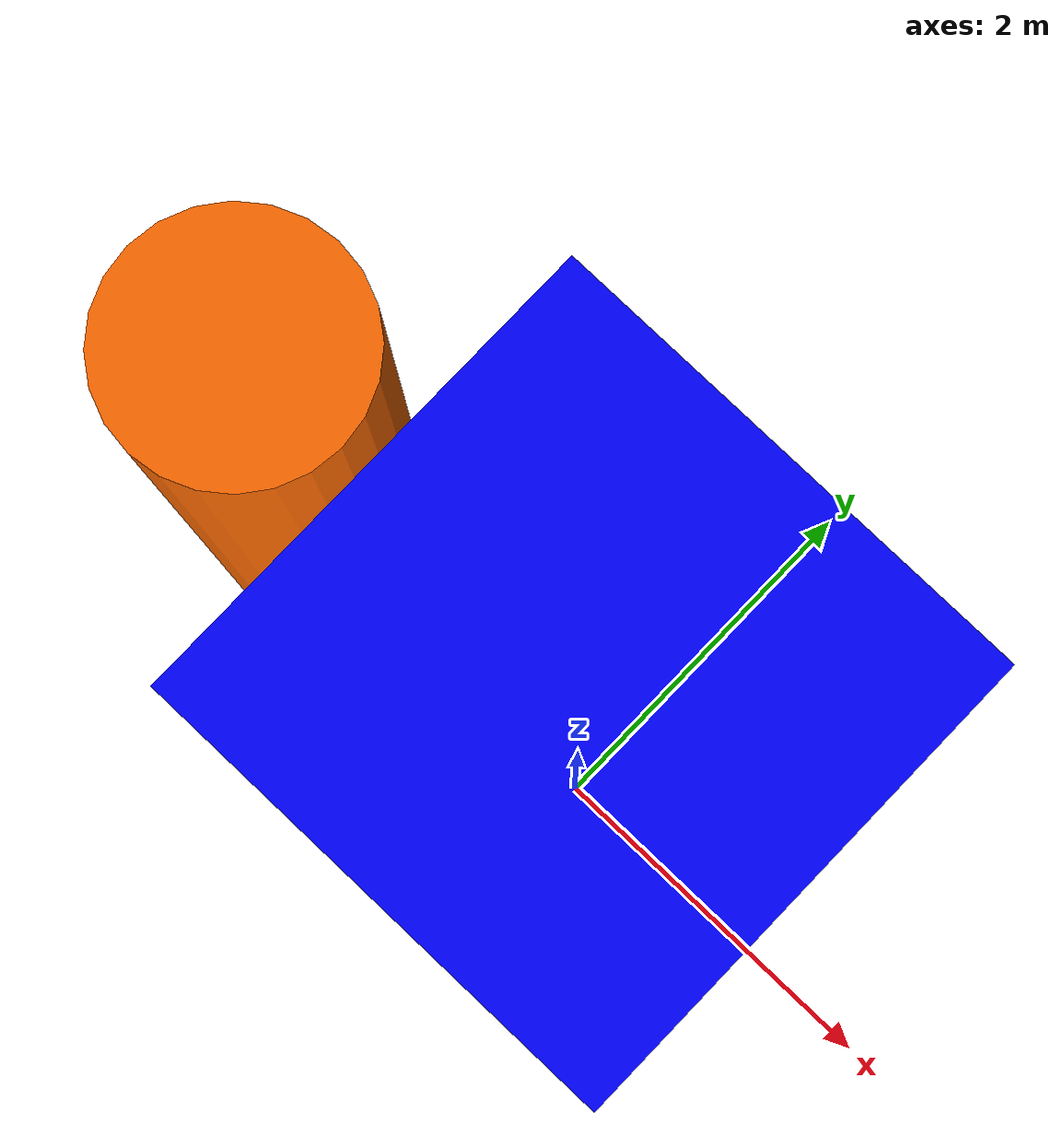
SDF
<sdf version='1.11'>
    <model name='robot_model'>
        <link name='base_link'>
            <inertial>
                <pose>0 0 0 0 0 0</pose>
                <mass>100</mass>
                <inertia>
                    <ixx>70.833330000000004</ixx>
                    <ixy>0</ixy>
                    <ixz>0</ixz>
                    <iyy>70.833330000000004</iyy>
                    <iyz>0</iyz>
                    <izz>6.6666699999999999</izz>
                </inertia>
            </inertial>
            <collision name='base_link_fixed_joint_lump__base_collision_collision'>
                <pose>0 0 0 0 0 0</pose>
                <geometry>
                    <box>
                        <size>2 2 9</size>
                    </box>
                </geometry>
            </collision>
            <visual name='base_link_fixed_joint_lump__base_visual'>
                <pose>0 0 0 0 0 0</pose>
                <geometry>
                    <box>
                        <size>2 2 9</size>
                    </box>
                </geometry>
                <material>
                    <diffuse>0 0 1 1</diffuse>
                    <ambient>0 0 1 1</ambient>
                </material>
            </visual>
        </link>
        <joint name='arm_base_joint' type='revolute'>
            <pose relative_to='base_link'>-1.6 0 3.5 0 0 0</pose>
            <parent>base_link</parent>
            <child>arm_link</child>
            <axis>
                <xyz>1 0 0</xyz>
                <limit>
                    <lower>0</lower>
                    <upper>1.57</upper>
                    <effort>200</effort>
                    <velocity>100</velocity>
                </limit>
                <dynamics>
                </dynamics>
            </axis>
            <sensor name="force_torque_sensor" type="force_torque">
                <update_rate>2</update_rate>                <!-- Hz -->
                <topic>/arm_base_joint_ft</topic>
                <force_torque>
                    <frame>child</frame>
                </force_torque>
            </sensor>
        </joint>
        <link name='arm_link'>
            <pose relative_to='arm_base_joint'>0 0 0 0 0 0</pose>
            <inertial>
                <pose>0 0 -7.0909090909090908 0 0 0</pose>
                <mass>1.1</mass>
                <inertia>
                    <ixx>2.480489090909082</ixx>
                    <ixy>0</ixy>
                    <ixz>0</ixz>
                    <iyy>1.953409090909084</iyy>
                    <iyz>0</iyz>
                    <izz>0.63957999999999993</izz>
                </inertia>
            </inertial>
            <collision name='arm_link_fixed_joint_lump__arm_collision_collision'>
                <pose>0 0 -3 0 0 0</pose>
                <geometry>
                    <cylinder>
                        <length>8</length>
                        <radius>0.5</radius>
                    </cylinder>
                </geometry>
            </collision>
            <visual name='arm_link_fixed_joint_lump__arm_visual'>
                <pose>0 0 -3 0 0 0</pose>
                <geometry>
                    <cylinder>
                        <length>8</length>
                        <radius>0.5</radius>
                    </cylinder>
                </geometry>
                <material>
                    <diffuse>1 0.411762476 0 1</diffuse>
                    <ambient>1 0.411762476 0 1</ambient>
                </material>
            </visual>
            <visual name='arm_link_fixed_joint_lump__load_visual_1'>
                <pose>0 0 -7.5 0 0 -3.1415899999999999</pose>
                <geometry>
                    <sphere>
                        <radius>0.5</radius>
                    </sphere>
                </geometry>
                <material>
                    <diffuse>0 1 0 1</diffuse>
                    <ambient>0 1 0 1</ambient>
                </material>
            </visual>
        </link>
        <frame name='arm_load_joint' attached_to='arm_link'>
            <pose>0 0 -7.5 0 0 -3.1415899999999999</pose>
        </frame>
        <frame name='load_link' attached_to='arm_load_joint'>
            <pose>0 0 0 0 0 0</pose>
        </frame>
        <plugin filename="gz-sim-joint-position-controller-system" name="gz::sim::systems::JointPositionController">
            <joint_name>arm_base_joint</joint_name>
            <p_gain>300</p_gain>
            <i_gain>100</i_gain>
            <d_gain>200</d_gain>
            <i_max>100</i_max>
            <i_min>-100</i_min>
            <cmd_max>200</cmd_max>
            <cmd_min>-200</cmd_min>
            <initial_position>0</initial_position>
        </plugin>
        <plugin filename="gz-sim-joint-state-publisher-system" name="gz::sim::systems::JointStatePublisher">
            <joint_name>arm_base_joint</joint_name>
            <topic>/arm_base_joint_state</topic>
        </plugin>
    </model>
</sdf>
